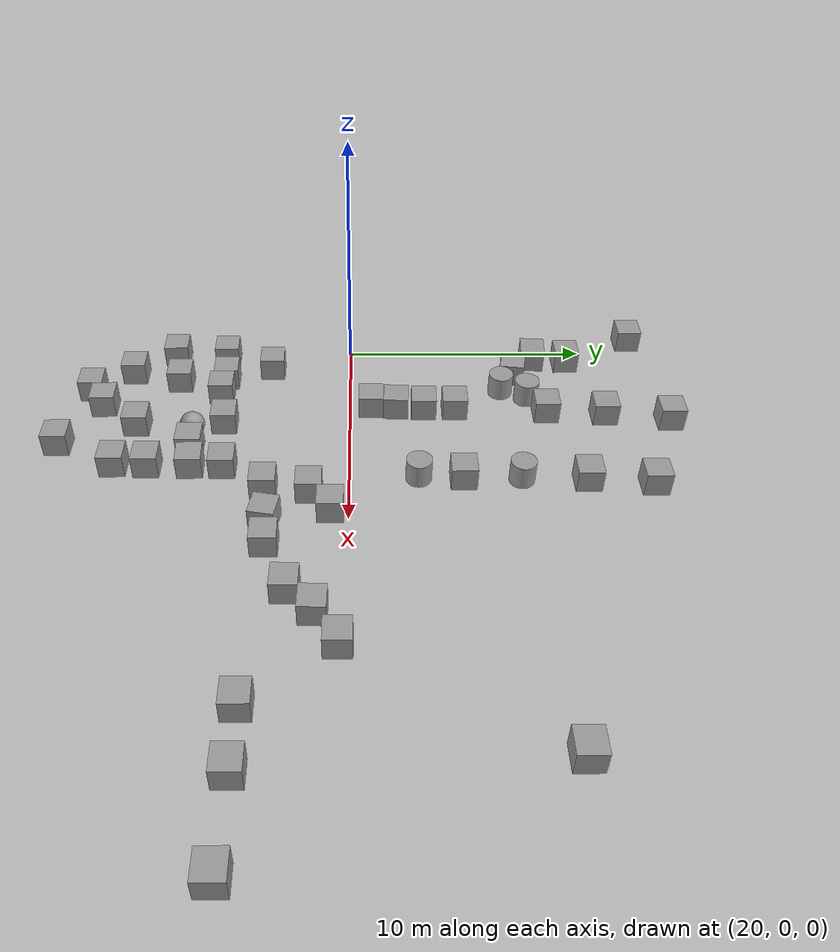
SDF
<sdf version="1.6">
 <world name="default">
  <model name="map_hybrid_35.688987_140.02092_100_100">
   <static>1</static>
   <link name="link">
    <collision name="collision">
     <pose>0 0 -0.5 0 -0 0</pose>
     <geometry><box><size>620.818 620.818 1</size></box></geometry>
    </collision>
    <visual name="visual0_0">
     <pose>0 0 -0.5 0 -0 1.5708</pose>
     <geometry><box><size>620.818 620.818 1</size></box></geometry>
     <material>
      <script>
       <uri>model://map_hybrid_35.688987_140.02092_100_100/materials/scripts</uri>
       <uri>model://map_hybrid_35.688987_140.02092_100_100/materials/textures</uri>
       <name>map_hybrid_35.688987_140.02092_100_100/0_0</name>
      </script>
     </material>
    </visual>
   </link>
   <pose>83.5906 -8.48411 0 0 0 -1.31014</pose>
  </model>
  <model name="unit_box_3">
   <pose>21.7284 6.87308 0.499997 -0 -6e-06 -0.140576</pose>
   <link name="link">
    <inertial>
     <mass>1</mass>
     <inertia>
      <ixx>0.166667</ixx>
      <ixy>0</ixy>
      <ixz>0</ixz>
      <iyy>0.166667</iyy>
      <iyz>0</iyz>
      <izz>0.166667</izz>
     </inertia>
    </inertial>
    <collision name="collision"><geometry><box><size>1 1 1</size></box></geometry></collision>
    <visual name="visual">
     <geometry><box><size>1 1 1</size></box></geometry>
     <material>
      <script><name>Gazebo/Grey</name><uri>file://media/materials/scripts/gazebo.material</uri></script>
     </material>
    </visual>
   </link>
  </model>
  <model name="unit_box_5">
   <pose>27.3582 -6.14171 0.5 3e-06 -3e-06 0.033071</pose>
   <link name="link">
    <inertial>
     <mass>1</mass>
     <inertia>
      <ixx>0.166667</ixx>
      <ixy>0</ixy>
      <ixz>0</ixz>
      <iyy>0.166667</iyy>
      <iyz>0</iyz>
      <izz>0.166667</izz>
     </inertia>
    </inertial>
    <collision name="collision"><geometry><box><size>1 1 1</size></box></geometry></collision>
    <visual name="visual">
     <geometry><box><size>1 1 1</size></box></geometry>
     <material>
      <script><name>Gazebo/Grey</name><uri>file://media/materials/scripts/gazebo.material</uri></script>
     </material>
    </visual>
   </link>
  </model>
  <model name="unit_box_6">
   <pose>27.3129 -7.80704 0.5 0 -0 8.3e-05</pose>
   <link name="link">
    <inertial>
     <mass>1</mass>
     <inertia>
      <ixx>0.166667</ixx>
      <ixy>0</ixy>
      <ixz>0</ixz>
      <iyy>0.166667</iyy>
      <iyz>0</iyz>
      <izz>0.166667</izz>
     </inertia>
    </inertial>
    <collision name="collision"><geometry><box><size>1 1 1</size></box></geometry></collision>
    <visual name="visual">
     <geometry><box><size>1 1 1</size></box></geometry>
     <material>
      <script><name>Gazebo/Grey</name><uri>file://media/materials/scripts/gazebo.material</uri></script>
     </material>
    </visual>
   </link>
  </model>
  <model name="unit_box_7">
   <pose>27.2533 -9.11782 0.5 0 -0 8.2e-05</pose>
   <link name="link">
    <inertial>
     <mass>1</mass>
     <inertia>
      <ixx>0.166667</ixx>
      <ixy>0</ixy>
      <ixz>0</ixz>
      <iyy>0.166667</iyy>
      <iyz>0</iyz>
      <izz>0.166667</izz>
     </inertia>
    </inertial>
    <collision name="collision"><geometry><box><size>1 1 1</size></box></geometry></collision>
    <visual name="visual">
     <geometry><box><size>1 1 1</size></box></geometry>
     <material>
      <script><name>Gazebo/Grey</name><uri>file://media/materials/scripts/gazebo.material</uri></script>
     </material>
    </visual>
   </link>
  </model>
  <model name="unit_box_8">
   <pose>21.5231 -9.15553 0.5 -0 -0 -0</pose>
   <link name="link">
    <inertial>
     <mass>1</mass>
     <inertia>
      <ixx>0.166667</ixx>
      <ixy>0</ixy>
      <ixz>0</ixz>
      <iyy>0.166667</iyy>
      <iyz>0</iyz>
      <izz>0.166667</izz>
     </inertia>
    </inertial>
    <collision name="collision"><geometry><box><size>1 1 1</size></box></geometry></collision>
    <visual name="visual">
     <geometry><box><size>1 1 1</size></box></geometry>
     <material>
      <script><name>Gazebo/Grey</name><uri>file://media/materials/scripts/gazebo.material</uri></script>
     </material>
    </visual>
   </link>
  </model>
  <model name="unit_box_9">
   <pose>20.3129 -7.50326 0.5 -0 -0 -0</pose>
   <link name="link">
    <inertial>
     <mass>1</mass>
     <inertia>
      <ixx>0.166667</ixx>
      <ixy>0</ixy>
      <ixz>0</ixz>
      <iyy>0.166667</iyy>
      <iyz>0</iyz>
      <izz>0.166667</izz>
     </inertia>
    </inertial>
    <collision name="collision"><geometry><box><size>1 1 1</size></box></geometry></collision>
    <visual name="visual">
     <geometry><box><size>1 1 1</size></box></geometry>
     <material>
      <script><name>Gazebo/Grey</name><uri>file://media/materials/scripts/gazebo.material</uri></script>
     </material>
    </visual>
   </link>
  </model>
  <model name="unit_box_10">
   <pose>22.6831 -10.7522 0.499997 -6e-06 -0 0.017833</pose>
   <link name="link">
    <inertial>
     <mass>1</mass>
     <inertia>
      <ixx>0.166667</ixx>
      <ixy>0</ixy>
      <ixz>0</ixz>
      <iyy>0.166667</iyy>
      <iyz>0</iyz>
      <izz>0.166667</izz>
     </inertia>
    </inertial>
    <collision name="collision"><geometry><box><size>1 1 1</size></box></geometry></collision>
    <visual name="visual">
     <geometry><box><size>1 1 1</size></box></geometry>
     <material>
      <script><name>Gazebo/Grey</name><uri>file://media/materials/scripts/gazebo.material</uri></script>
     </material>
    </visual>
   </link>
  </model>
  <model name="unit_box_12">
   <pose>20.4264 -5.31382 0.5 -0 -0 -0</pose>
   <link name="link">
    <inertial>
     <mass>1</mass>
     <inertia>
      <ixx>0.166667</ixx>
      <ixy>0</ixy>
      <ixz>0</ixz>
      <iyy>0.166667</iyy>
      <iyz>0</iyz>
      <izz>0.166667</izz>
     </inertia>
    </inertial>
    <collision name="collision"><geometry><box><size>1 1 1</size></box></geometry></collision>
    <visual name="visual">
     <geometry><box><size>1 1 1</size></box></geometry>
     <material>
      <script><name>Gazebo/Grey</name><uri>file://media/materials/scripts/gazebo.material</uri></script>
     </material>
    </visual>
   </link>
  </model>
  <model name="unit_box_19">
   <pose>24.9113 -8.57037 0.5 -0 -0 -0</pose>
   <link name="link">
    <inertial>
     <mass>1</mass>
     <inertia>
      <ixx>0.166667</ixx>
      <ixy>0</ixy>
      <ixz>0</ixz>
      <iyy>0.166667</iyy>
      <iyz>0</iyz>
      <izz>0.166667</izz>
     </inertia>
    </inertial>
    <collision name="collision"><geometry><box><size>1 1 1</size></box></geometry></collision>
    <visual name="visual">
     <geometry><box><size>1 1 1</size></box></geometry>
     <material>
      <script><name>Gazebo/Grey</name><uri>file://media/materials/scripts/gazebo.material</uri></script>
     </material>
    </visual>
   </link>
  </model>
  <model name="unit_box_20">
   <pose>28.1553 9.07558 0.5 0 -0 2.6e-05</pose>
   <link name="link">
    <inertial>
     <mass>1</mass>
     <inertia>
      <ixx>0.166667</ixx>
      <ixy>0</ixy>
      <ixz>0</ixz>
      <iyy>0.166667</iyy>
      <iyz>0</iyz>
      <izz>0.166667</izz>
     </inertia>
    </inertial>
    <collision name="collision"><geometry><box><size>1 1 1</size></box></geometry></collision>
    <visual name="visual">
     <geometry><box><size>1 1 1</size></box></geometry>
     <material>
      <script><name>Gazebo/Grey</name><uri>file://media/materials/scripts/gazebo.material</uri></script>
     </material>
    </visual>
   </link>
  </model>
  <model name="unit_box_21">
   <pose>24.6286 12.9826 0.5 -0 -0 -0</pose>
   <link name="link">
    <inertial>
     <mass>1</mass>
     <inertia>
      <ixx>0.166667</ixx>
      <ixy>0</ixy>
      <ixz>0</ixz>
      <iyy>0.166667</iyy>
      <iyz>0</iyz>
      <izz>0.166667</izz>
     </inertia>
    </inertial>
    <collision name="collision"><geometry><box><size>1 1 1</size></box></geometry></collision>
    <visual name="visual">
     <geometry><box><size>1 1 1</size></box></geometry>
     <material>
      <script><name>Gazebo/Grey</name><uri>file://media/materials/scripts/gazebo.material</uri></script>
     </material>
    </visual>
   </link>
  </model>
  <model name="unit_box_22">
   <pose>24.1696 7.99312 0.5 -0 -0 -0</pose>
   <link name="link">
    <inertial>
     <mass>1</mass>
     <inertia>
      <ixx>0.166667</ixx>
      <ixy>0</ixy>
      <ixz>0</ixz>
      <iyy>0.166667</iyy>
      <iyz>0</iyz>
      <izz>0.166667</izz>
     </inertia>
    </inertial>
    <collision name="collision"><geometry><box><size>1 1 1</size></box></geometry></collision>
    <visual name="visual">
     <geometry><box><size>1 1 1</size></box></geometry>
     <material>
      <script><name>Gazebo/Grey</name><uri>file://media/materials/scripts/gazebo.material</uri></script>
     </material>
    </visual>
   </link>
  </model>
  <model name="unit_box_23">
   <pose>28.0414 4.35286 0.5 0 -0 2.4e-05</pose>
   <link name="link">
    <inertial>
     <mass>1</mass>
     <inertia>
      <ixx>0.166667</ixx>
      <ixy>0</ixy>
      <ixz>0</ixz>
      <iyy>0.166667</iyy>
      <iyz>0</iyz>
      <izz>0.166667</izz>
     </inertia>
    </inertial>
    <collision name="collision"><geometry><box><size>1 1 1</size></box></geometry></collision>
    <visual name="visual">
     <geometry><box><size>1 1 1</size></box></geometry>
     <material>
      <script><name>Gazebo/Grey</name><uri>file://media/materials/scripts/gazebo.material</uri></script>
     </material>
    </visual>
   </link>
  </model>
  <model name="unit_box_24">
   <pose>22.9142 -5.33983 0.500002 -4e-06 -0 -0.000655</pose>
   <link name="link">
    <inertial>
     <mass>1</mass>
     <inertia>
      <ixx>0.166667</ixx>
      <ixy>0</ixy>
      <ixz>0</ixz>
      <iyy>0.166667</iyy>
      <iyz>0</iyz>
      <izz>0.166667</izz>
     </inertia>
    </inertial>
    <collision name="collision"><geometry><box><size>1 1 1</size></box></geometry></collision>
    <visual name="visual">
     <geometry><box><size>1 1 1</size></box></geometry>
     <material>
      <script><name>Gazebo/Grey</name><uri>file://media/materials/scripts/gazebo.material</uri></script>
     </material>
    </visual>
   </link>
  </model>
  <model name="unit_box_25">
   <pose>33.4873 -2.14933 0.500002 -4e-06 -0 -0.02178</pose>
   <link name="link">
    <inertial>
     <mass>1</mass>
     <inertia>
      <ixx>0.166667</ixx>
      <ixy>0</ixy>
      <ixz>0</ixz>
      <iyy>0.166667</iyy>
      <iyz>0</iyz>
      <izz>0.166667</izz>
     </inertia>
    </inertial>
    <collision name="collision"><geometry><box><size>1 1 1</size></box></geometry></collision>
    <visual name="visual">
     <geometry><box><size>1 1 1</size></box></geometry>
     <material>
      <script><name>Gazebo/Grey</name><uri>file://media/materials/scripts/gazebo.material</uri></script>
     </material>
    </visual>
   </link>
  </model>
  <model name="unit_box_26">
   <pose>31.3683 -3.0106 0.5 0 -0 7.8e-05</pose>
   <link name="link">
    <inertial>
     <mass>1</mass>
     <inertia>
      <ixx>0.166667</ixx>
      <ixy>0</ixy>
      <ixz>0</ixz>
      <iyy>0.166667</iyy>
      <iyz>0</iyz>
      <izz>0.166667</izz>
     </inertia>
    </inertial>
    <collision name="collision"><geometry><box><size>1 1 1</size></box></geometry></collision>
    <visual name="visual">
     <geometry><box><size>1 1 1</size></box></geometry>
     <material>
      <script><name>Gazebo/Grey</name><uri>file://media/materials/scripts/gazebo.material</uri></script>
     </material>
    </visual>
   </link>
  </model>
  <model name="unit_box_27">
   <pose>43.3931 -3.51647 0.5 -0 -0 -0</pose>
   <link name="link">
    <inertial>
     <mass>1</mass>
     <inertia>
      <ixx>0.166667</ixx>
      <ixy>0</ixy>
      <ixz>0</ixz>
      <iyy>0.166667</iyy>
      <iyz>0</iyz>
      <izz>0.166667</izz>
     </inertia>
    </inertial>
    <collision name="collision"><geometry><box><size>1 1 1</size></box></geometry></collision>
    <visual name="visual">
     <geometry><box><size>1 1 1</size></box></geometry>
     <material>
      <script><name>Gazebo/Grey</name><uri>file://media/materials/scripts/gazebo.material</uri></script>
     </material>
    </visual>
   </link>
  </model>
  <model name="unit_box_28">
   <pose>40.2671 -3.40019 0.5 -0 -0 -0</pose>
   <link name="link">
    <inertial>
     <mass>1</mass>
     <inertia>
      <ixx>0.166667</ixx>
      <ixy>0</ixy>
      <ixz>0</ixz>
      <iyy>0.166667</iyy>
      <iyz>0</iyz>
      <izz>0.166667</izz>
     </inertia>
    </inertial>
    <collision name="collision"><geometry><box><size>1 1 1</size></box></geometry></collision>
    <visual name="visual">
     <geometry><box><size>1 1 1</size></box></geometry>
     <material>
      <script><name>Gazebo/Grey</name><uri>file://media/materials/scripts/gazebo.material</uri></script>
     </material>
    </visual>
   </link>
  </model>
  <model name="unit_box_29">
   <pose>38.0444 -3.36531 0.5 -0 -0 -0</pose>
   <link name="link">
    <inertial>
     <mass>1</mass>
     <inertia>
      <ixx>0.166667</ixx>
      <ixy>0</ixy>
      <ixz>0</ixz>
      <iyy>0.166667</iyy>
      <iyz>0</iyz>
      <izz>0.166667</izz>
     </inertia>
    </inertial>
    <collision name="collision"><geometry><box><size>1 1 1</size></box></geometry></collision>
    <visual name="visual">
     <geometry><box><size>1 1 1</size></box></geometry>
     <material>
      <script><name>Gazebo/Grey</name><uri>file://media/materials/scripts/gazebo.material</uri></script>
     </material>
    </visual>
   </link>
  </model>
  <model name="unit_box_31">
   <pose>39.7981 7.10005 0.5 -0 -0 -0</pose>
   <link name="link">
    <inertial>
     <mass>1</mass>
     <inertia>
      <ixx>0.166667</ixx>
      <ixy>0</ixy>
      <ixz>0</ixz>
      <iyy>0.166667</iyy>
      <iyz>0</iyz>
      <izz>0.166667</izz>
     </inertia>
    </inertial>
    <collision name="collision"><geometry><box><size>1 1 1</size></box></geometry></collision>
    <visual name="visual">
     <geometry><box><size>1 1 1</size></box></geometry>
     <material>
      <script><name>Gazebo/Grey</name><uri>file://media/materials/scripts/gazebo.material</uri></script>
     </material>
    </visual>
   </link>
  </model>
  <model name="unit_cylinder">
   <pose>22.6702 6.2885 0.5 0 -0 0.048512</pose>
   <link name="link">
    <inertial>
     <mass>1</mass>
     <inertia><ixx>0.145833</ixx><ixy>0</ixy><ixz>0</ixz><iyy>0.145833</iyy><iyz>0</iyz><izz>0.125</izz></inertia>
    </inertial>
    <collision name="collision">
     <geometry><cylinder><radius>0.5</radius><length>1</length></cylinder></geometry>
    </collision>
    <visual name="visual">
     <geometry><cylinder><radius>0.5</radius><length>1</length></cylinder></geometry>
     <material>
      <script><name>Gazebo/Grey</name><uri>file://media/materials/scripts/gazebo.material</uri></script>
     </material>
    </visual>
   </link>
  </model>
  <model name="unit_cylinder_0">
   <pose>27.9824 6.60342 0.49999 0 0 -0.001649</pose>
   <link name="link">
    <inertial>
     <mass>1</mass>
     <inertia><ixx>0.145833</ixx><ixy>0</ixy><ixz>0</ixz><iyy>0.145833</iyy><iyz>0</iyz><izz>0.125</izz></inertia>
    </inertial>
    <collision name="collision">
     <geometry><cylinder><radius>0.5</radius><length>1</length></cylinder></geometry>
    </collision>
    <visual name="visual">
     <geometry><cylinder><radius>0.5</radius><length>1</length></cylinder></geometry>
     <material>
      <script><name>Gazebo/Grey</name><uri>file://media/materials/scripts/gazebo.material</uri></script>
     </material>
    </visual>
   </link>
  </model>
  <model name="unit_sphere">
   <pose>25.2154 -6.29139 0.5 0.002471 -0.011752 -0.007231</pose>
   <link name="link">
    <inertial>
     <mass>1</mass>
     <inertia><ixx>0.1</ixx><ixy>0</ixy><ixz>0</ixz><iyy>0.1</iyy><iyz>0</iyz><izz>0.1</izz></inertia>
    </inertial>
    <collision name="collision"><geometry><sphere><radius>0.5</radius></sphere></geometry></collision>
    <visual name="visual">
     <geometry><sphere><radius>0.5</radius></sphere></geometry>
     <material>
      <script><name>Gazebo/Grey</name><uri>file://media/materials/scripts/gazebo.material</uri></script>
     </material>
    </visual>
   </link>
  </model>
  <model name="unit_cylinder_3">
   <pose>23.1299 7.31541 0.49999 0 -0 -0.006828</pose>
   <link name="link">
    <inertial>
     <mass>1</mass>
     <inertia><ixx>0.145833</ixx><ixy>0</ixy><ixz>0</ixz><iyy>0.145833</iyy><iyz>0</iyz><izz>0.125</izz></inertia>
    </inertial>
    <collision name="collision">
     <geometry><cylinder><radius>0.5</radius><length>1</length></cylinder></geometry>
    </collision>
    <visual name="visual">
     <geometry><cylinder><radius>0.5</radius><length>1</length></cylinder></geometry>
     <material>
      <script><name>Gazebo/Grey</name><uri>file://media/materials/scripts/gazebo.material</uri></script>
     </material>
    </visual>
   </link>
  </model>
  <model name="unit_cylinder_5">
   <pose>27.8888 2.65915 0.500002 -1e-06 -4e-06 -0.001594</pose>
   <link name="link">
    <inertial>
     <mass>1</mass>
     <inertia><ixx>0.145833</ixx><ixy>0</ixy><ixz>0</ixz><iyy>0.145833</iyy><iyz>0</iyz><izz>0.125</izz></inertia>
    </inertial>
    <collision name="collision">
     <geometry><cylinder><radius>0.5</radius><length>1</length></cylinder></geometry>
    </collision>
    <visual name="visual">
     <geometry><cylinder><radius>0.5</radius><length>1</length></cylinder></geometry>
     <material>
      <script><name>Gazebo/Grey</name><uri>file://media/materials/scripts/gazebo.material</uri></script>
     </material>
    </visual>
   </link>
  </model>
  <model name="unit_box_34">
   <pose>29.7195 -0.685685 0.5 0 -0 0.001182</pose>
   <link name="link">
    <inertial>
     <mass>1</mass>
     <inertia>
      <ixx>0.166667</ixx>
      <ixy>0</ixy>
      <ixz>0</ixz>
      <iyy>0.166667</iyy>
      <iyz>0</iyz>
      <izz>0.166667</izz>
     </inertia>
    </inertial>
    <collision name="collision"><geometry><box><size>1 1 1</size></box></geometry></collision>
    <visual name="visual">
     <geometry><box><size>1 1 1</size></box></geometry>
     <material>
      <script><name>Gazebo/Grey</name><uri>file://media/materials/scripts/gazebo.material</uri></script>
     </material>
    </visual>
   </link>
  </model>
  <model name="unit_box_35">
   <pose>26.0164 -11.524 0.5 -0 -0 -0</pose>
   <link name="link">
    <inertial>
     <mass>1</mass>
     <inertia>
      <ixx>0.166667</ixx>
      <ixy>0</ixy>
      <ixz>0</ixz>
      <iyy>0.166667</iyy>
      <iyz>0</iyz>
      <izz>0.166667</izz>
     </inertia>
    </inertial>
    <collision name="collision"><geometry><box><size>1 1 1</size></box></geometry></collision>
    <visual name="visual">
     <geometry><box><size>1 1 1</size></box></geometry>
     <material>
      <script><name>Gazebo/Grey</name><uri>file://media/materials/scripts/gazebo.material</uri></script>
     </material>
    </visual>
   </link>
  </model>
  <model name="unit_box_36">
   <pose>20.8281 9.25024 0.5 0 -0 0.002517</pose>
   <link name="link">
    <inertial>
     <mass>1</mass>
     <inertia>
      <ixx>0.166667</ixx>
      <ixy>0</ixy>
      <ixz>0</ixz>
      <iyy>0.166667</iyy>
      <iyz>0</iyz>
      <izz>0.166667</izz>
     </inertia>
    </inertial>
    <collision name="collision"><geometry><box><size>1 1 1</size></box></geometry></collision>
    <visual name="visual">
     <geometry><box><size>1 1 1</size></box></geometry>
     <material>
      <script><name>Gazebo/Grey</name><uri>file://media/materials/scripts/gazebo.material</uri></script>
     </material>
    </visual>
   </link>
  </model>
  <model name="unit_box_38">
   <pose>20.7079 7.8236 0.5 -0 -0 -0.07459</pose>
   <link name="link">
    <inertial>
     <mass>1</mass>
     <inertia>
      <ixx>0.166667</ixx>
      <ixy>0</ixy>
      <ixz>0</ixz>
      <iyy>0.166667</iyy>
      <iyz>0</iyz>
      <izz>0.166667</izz>
     </inertia>
    </inertial>
    <collision name="collision"><geometry><box><size>1 1 1</size></box></geometry></collision>
    <visual name="visual">
     <geometry><box><size>1 1 1</size></box></geometry>
     <material>
      <script><name>Gazebo/Grey</name><uri>file://media/materials/scripts/gazebo.material</uri></script>
     </material>
    </visual>
   </link>
  </model>
  <model name="unit_box_39">
   <pose>22.1024 -7.15197 0.5 -0 -0 -0</pose>
   <link name="link">
    <inertial>
     <mass>1</mass>
     <inertia>
      <ixx>0.166667</ixx>
      <ixy>0</ixy>
      <ixz>0</ixz>
      <iyy>0.166667</iyy>
      <iyz>0</iyz>
      <izz>0.166667</izz>
     </inertia>
    </inertial>
    <collision name="collision"><geometry><box><size>1 1 1</size></box></geometry></collision>
    <visual name="visual">
     <geometry><box><size>1 1 1</size></box></geometry>
     <material>
      <script><name>Gazebo/Grey</name><uri>file://media/materials/scripts/gazebo.material</uri></script>
     </material>
    </visual>
   </link>
  </model>
  <model name="unit_box_41">
   <pose>35.7358 -0.30518 0.5 -0 -0 -0</pose>
   <link name="link">
    <inertial>
     <mass>1</mass>
     <inertia>
      <ixx>0.166667</ixx>
      <ixy>0</ixy>
      <ixz>0</ixz>
      <iyy>0.166667</iyy>
      <iyz>0</iyz>
      <izz>0.166667</izz>
     </inertia>
    </inertial>
    <collision name="collision"><geometry><box><size>1 1 1</size></box></geometry></collision>
    <visual name="visual">
     <geometry><box><size>1 1 1</size></box></geometry>
     <material>
      <script><name>Gazebo/Grey</name><uri>file://media/materials/scripts/gazebo.material</uri></script>
     </material>
    </visual>
   </link>
  </model>
  <model name="unit_box_42">
   <pose>24.3314 10.3647 0.5 0 -0 2.8e-05</pose>
   <link name="link">
    <inertial>
     <mass>1</mass>
     <inertia>
      <ixx>0.166667</ixx>
      <ixy>0</ixy>
      <ixz>0</ixz>
      <iyy>0.166667</iyy>
      <iyz>0</iyz>
      <izz>0.166667</izz>
     </inertia>
    </inertial>
    <collision name="collision"><geometry><box><size>1 1 1</size></box></geometry></collision>
    <visual name="visual">
     <geometry><box><size>1 1 1</size></box></geometry>
     <material>
      <script><name>Gazebo/Grey</name><uri>file://media/materials/scripts/gazebo.material</uri></script>
     </material>
    </visual>
   </link>
  </model>
  <model name="unit_box_53">
   <pose>26.2211 -6.28205 0.5 0 -0 0.002465</pose>
   <link name="link">
    <inertial>
     <mass>1</mass>
     <inertia>
      <ixx>0.166667</ixx>
      <ixy>0</ixy>
      <ixz>0</ixz>
      <iyy>0.166667</iyy>
      <iyz>0</iyz>
      <izz>0.166667</izz>
     </inertia>
    </inertial>
    <collision name="collision"><geometry><box><size>1 1 1</size></box></geometry></collision>
    <visual name="visual">
     <geometry><box><size>1 1 1</size></box></geometry>
     <material>
      <script><name>Gazebo/Grey</name><uri>file://media/materials/scripts/gazebo.material</uri></script>
     </material>
    </visual>
   </link>
  </model>
  <model name="unit_box_54">
   <pose>30.1712 -3.0764 0.5 -0 -0 -0.186557</pose>
   <link name="link">
    <inertial>
     <mass>1</mass>
     <inertia>
      <ixx>0.166667</ixx>
      <ixy>0</ixy>
      <ixz>0</ixz>
      <iyy>0.166667</iyy>
      <iyz>0</iyz>
      <izz>0.166667</izz>
     </inertia>
    </inertial>
    <collision name="collision"><geometry><box><size>1 1 1</size></box></geometry></collision>
    <visual name="visual">
     <geometry><box><size>1 1 1</size></box></geometry>
     <material>
      <script><name>Gazebo/Grey</name><uri>file://media/materials/scripts/gazebo.material</uri></script>
     </material>
    </visual>
   </link>
  </model>
  <model name="unit_box_55">
   <pose>24.7849 -5.05538 0.5 -0 -0 -0</pose>
   <link name="link">
    <inertial>
     <mass>1</mass>
     <inertia>
      <ixx>0.166667</ixx>
      <ixy>0</ixy>
      <ixz>0</ixz>
      <iyy>0.166667</iyy>
      <iyz>0</iyz>
      <izz>0.166667</izz>
     </inertia>
    </inertial>
    <collision name="collision"><geometry><box><size>1 1 1</size></box></geometry></collision>
    <visual name="visual">
     <geometry><box><size>1 1 1</size></box></geometry>
     <material>
      <script><name>Gazebo/Grey</name><uri>file://media/materials/scripts/gazebo.material</uri></script>
     </material>
    </visual>
   </link>
  </model>
  <model name="unit_box_56">
   <pose>28.7204 -1.50976 0.5 0 -0 0.001186</pose>
   <link name="link">
    <inertial>
     <mass>1</mass>
     <inertia>
      <ixx>0.166667</ixx>
      <ixy>0</ixy>
      <ixz>0</ixz>
      <iyy>0.166667</iyy>
      <iyz>0</iyz>
      <izz>0.166667</izz>
     </inertia>
    </inertial>
    <collision name="collision"><geometry><box><size>1 1 1</size></box></geometry></collision>
    <visual name="visual">
     <geometry><box><size>1 1 1</size></box></geometry>
     <material>
      <script><name>Gazebo/Grey</name><uri>file://media/materials/scripts/gazebo.material</uri></script>
     </material>
    </visual>
   </link>
  </model>
  <model name="unit_box_57">
   <pose>23.6717 -10.0898 0.5 0 -0 0.017608</pose>
   <link name="link">
    <inertial>
     <mass>1</mass>
     <inertia>
      <ixx>0.166667</ixx>
      <ixy>0</ixy>
      <ixz>0</ixz>
      <iyy>0.166667</iyy>
      <iyz>0</iyz>
      <izz>0.166667</izz>
     </inertia>
    </inertial>
    <collision name="collision"><geometry><box><size>1 1 1</size></box></geometry></collision>
    <visual name="visual">
     <geometry><box><size>1 1 1</size></box></geometry>
     <material>
      <script><name>Gazebo/Grey</name><uri>file://media/materials/scripts/gazebo.material</uri></script>
     </material>
    </visual>
   </link>
  </model>
  <model name="unit_box_61">
   <pose>19.3345 12.2092 0.5 0 -0 3.3e-05</pose>
   <link name="link">
    <inertial>
     <mass>1</mass>
     <inertia>
      <ixx>0.166667</ixx>
      <ixy>0</ixy>
      <ixz>0</ixz>
      <iyy>0.166667</iyy>
      <iyz>0</iyz>
      <izz>0.166667</izz>
     </inertia>
    </inertial>
    <collision name="collision"><geometry><box><size>1 1 1</size></box></geometry></collision>
    <visual name="visual">
     <geometry><box><size>1 1 1</size></box></geometry>
     <material>
      <script><name>Gazebo/Grey</name><uri>file://media/materials/scripts/gazebo.material</uri></script>
     </material>
    </visual>
   </link>
  </model>
  <model name="unit_box_71">
   <pose>21.9143 -5.20629 0.5 0 -0 -0.000654</pose>
   <link name="link">
    <inertial>
     <mass>1</mass>
     <inertia>
      <ixx>0.166667</ixx>
      <ixy>0</ixy>
      <ixz>0</ixz>
      <iyy>0.166667</iyy>
      <iyz>0</iyz>
      <izz>0.166667</izz>
     </inertia>
    </inertial>
    <collision name="collision"><geometry><box><size>1 1 1</size></box></geometry></collision>
    <visual name="visual">
     <geometry><box><size>1 1 1</size></box></geometry>
     <material>
      <script><name>Gazebo/Grey</name><uri>file://media/materials/scripts/gazebo.material</uri></script>
     </material>
    </visual>
   </link>
  </model>
  <model name="unit_box_72">
   <pose>21.2713 -3.31414 0.5 -0 -0 -0</pose>
   <link name="link">
    <inertial>
     <mass>1</mass>
     <inertia>
      <ixx>0.166667</ixx>
      <ixy>0</ixy>
      <ixz>0</ixz>
      <iyy>0.166667</iyy>
      <iyz>0</iyz>
      <izz>0.166667</izz>
     </inertia>
    </inertial>
    <collision name="collision"><geometry><box><size>1 1 1</size></box></geometry></collision>
    <visual name="visual">
     <geometry><box><size>1 1 1</size></box></geometry>
     <material>
      <script><name>Gazebo/Grey</name><uri>file://media/materials/scripts/gazebo.material</uri></script>
     </material>
    </visual>
   </link>
  </model>
  <model name="unit_box_73">
   <pose>34.4078 -1.16914 0.500002 -4e-06 -0 -0.022314</pose>
   <link name="link">
    <inertial>
     <mass>1</mass>
     <inertia>
      <ixx>0.166667</ixx>
      <ixy>0</ixy>
      <ixz>0</ixz>
      <iyy>0.166667</iyy>
      <iyz>0</iyz>
      <izz>0.166667</izz>
     </inertia>
    </inertial>
    <collision name="collision"><geometry><box><size>1 1 1</size></box></geometry></collision>
    <visual name="visual">
     <geometry><box><size>1 1 1</size></box></geometry>
     <material>
      <script><name>Gazebo/Grey</name><uri>file://media/materials/scripts/gazebo.material</uri></script>
     </material>
    </visual>
   </link>
  </model>
  <model name="unit_box_75">
   <pose>27.3906 -4.88194 0.5 0 -0 7.1e-05</pose>
   <link name="link">
    <inertial>
     <mass>1</mass>
     <inertia>
      <ixx>0.166667</ixx>
      <ixy>0</ixy>
      <ixz>0</ixz>
      <iyy>0.166667</iyy>
      <iyz>0</iyz>
      <izz>0.166667</izz>
     </inertia>
    </inertial>
    <collision name="collision"><geometry><box><size>1 1 1</size></box></geometry></collision>
    <visual name="visual">
     <geometry><box><size>1 1 1</size></box></geometry>
     <material>
      <script><name>Gazebo/Grey</name><uri>file://media/materials/scripts/gazebo.material</uri></script>
     </material>
    </visual>
   </link>
  </model>
  <model name="unit_box_76">
   <pose>28.5119 -3.23975 0.5 0 -0 7.6e-05</pose>
   <link name="link">
    <inertial>
     <mass>1</mass>
     <inertia>
      <ixx>0.166667</ixx>
      <ixy>0</ixy>
      <ixz>0</ixz>
      <iyy>0.166667</iyy>
      <iyz>0</iyz>
      <izz>0.166667</izz>
     </inertia>
    </inertial>
    <collision name="collision"><geometry><box><size>1 1 1</size></box></geometry></collision>
    <visual name="visual">
     <geometry><box><size>1 1 1</size></box></geometry>
     <material>
      <script><name>Gazebo/Grey</name><uri>file://media/materials/scripts/gazebo.material</uri></script>
     </material>
    </visual>
   </link>
  </model>
  <model name="unit_box_77">
   <pose>28.3565 11.5831 0.5 -0 -0 -0</pose>
   <link name="link">
    <inertial>
     <mass>1</mass>
     <inertia>
      <ixx>0.166667</ixx>
      <ixy>0</ixy>
      <ixz>0</ixz>
      <iyy>0.166667</iyy>
      <iyz>0</iyz>
      <izz>0.166667</izz>
     </inertia>
    </inertial>
    <collision name="collision"><geometry><box><size>1 1 1</size></box></geometry></collision>
    <visual name="visual">
     <geometry><box><size>1 1 1</size></box></geometry>
     <material>
      <script><name>Gazebo/Grey</name><uri>file://media/materials/scripts/gazebo.material</uri></script>
     </material>
    </visual>
   </link>
  </model>
  <model name="unit_box_81">
   <pose>23.9696 4.27025 0.5 -0 -0 -0</pose>
   <link name="link">
    <inertial>
     <mass>1</mass>
     <inertia>
      <ixx>0.166667</ixx>
      <ixy>0</ixy>
      <ixz>0</ixz>
      <iyy>0.166667</iyy>
      <iyz>0</iyz>
      <izz>0.166667</izz>
     </inertia>
    </inertial>
    <collision name="collision"><geometry><box><size>1 1 1</size></box></geometry></collision>
    <visual name="visual">
     <geometry><box><size>1 1 1</size></box></geometry>
     <material>
      <script><name>Gazebo/Grey</name><uri>file://media/materials/scripts/gazebo.material</uri></script>
     </material>
    </visual>
   </link>
  </model>
  <model name="unit_box_82">
   <pose>23.8856 1.87939 0.499995 0 -1e-05 -0.046474</pose>
   <link name="link">
    <inertial>
     <mass>1</mass>
     <inertia>
      <ixx>0.166667</ixx>
      <ixy>0</ixy>
      <ixz>0</ixz>
      <iyy>0.166667</iyy>
      <iyz>0</iyz>
      <izz>0.166667</izz>
     </inertia>
    </inertial>
    <collision name="collision"><geometry><box><size>1 1 1</size></box></geometry></collision>
    <visual name="visual">
     <geometry><box><size>1 1 1</size></box></geometry>
     <material>
      <script><name>Gazebo/Grey</name><uri>file://media/materials/scripts/gazebo.material</uri></script>
     </material>
    </visual>
   </link>
  </model>
  <model name="unit_box_83">
   <pose>23.95 3.00947 0.499999 -2e-06 -0 -0.018537</pose>
   <link name="link">
    <inertial>
     <mass>1</mass>
     <inertia>
      <ixx>0.166667</ixx>
      <ixy>0</ixy>
      <ixz>0</ixz>
      <iyy>0.166667</iyy>
      <iyz>0</iyz>
      <izz>0.166667</izz>
     </inertia>
    </inertial>
    <collision name="collision"><geometry><box><size>1 1 1</size></box></geometry></collision>
    <visual name="visual">
     <geometry><box><size>1 1 1</size></box></geometry>
     <material>
      <script><name>Gazebo/Grey</name><uri>file://media/materials/scripts/gazebo.material</uri></script>
     </material>
    </visual>
   </link>
  </model>
  <model name="unit_box_84">
   <pose>23.804 0.852394 0.5 -0 -0 -0</pose>
   <link name="link">
    <inertial>
     <mass>1</mass>
     <inertia>
      <ixx>0.166667</ixx>
      <ixy>0</ixy>
      <ixz>0</ixz>
      <iyy>0.166667</iyy>
      <iyz>0</iyz>
      <izz>0.166667</izz>
     </inertia>
    </inertial>
    <collision name="collision"><geometry><box><size>1 1 1</size></box></geometry></collision>
    <visual name="visual">
     <geometry><box><size>1 1 1</size></box></geometry>
     <material>
      <script><name>Gazebo/Grey</name><uri>file://media/materials/scripts/gazebo.material</uri></script>
     </material>
    </visual>
   </link>
  </model>
 </world>
</sdf>
